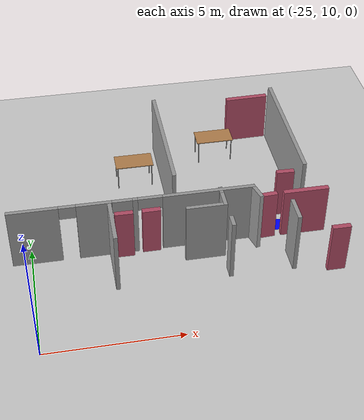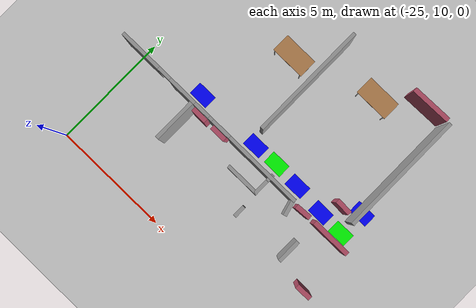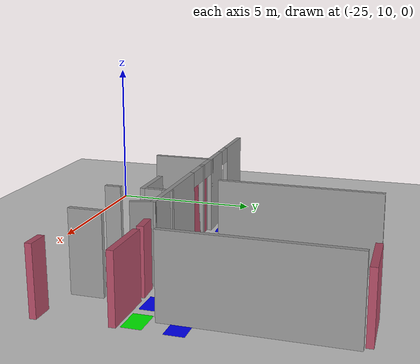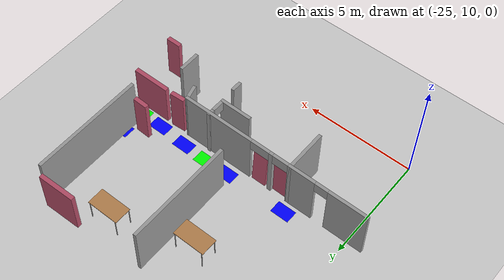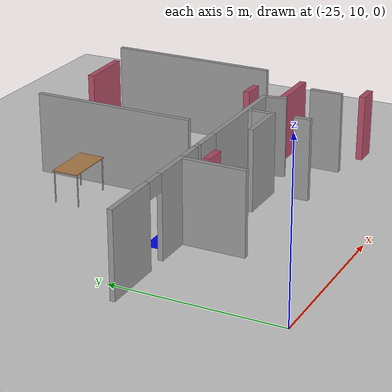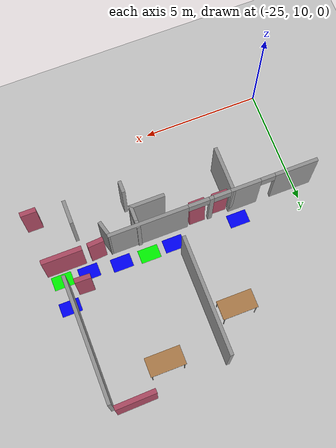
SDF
<sdf version="1.6">
 <world name="default">
  <model name="ground_plane">
   <pose>0 0 0.001 0 -0 0</pose>
   <static>1</static>
   <link name="link">
    <collision name="collision">
     <geometry><plane><normal>0 0 1</normal><size>100 100</size></plane></geometry>
     <surface><friction><ode><mu>100</mu><mu2>50</mu2></ode></friction></surface>
    </collision>
    <visual name="visual">
     <cast_shadows>0</cast_shadows>
     <geometry><plane><normal>0 0 1</normal><size>100 100</size></plane></geometry>
     <material>
      <script><uri>file://media/materials/scripts/gazebo.material</uri><name>Gazebo/Grey</name></script>
     </material>
    </visual>
   </link>
  </model>
  <model name="fin_se1f1.sdf">
   <pose>1.8125 -2.2901 0 0 -0 0</pose>
   <link name="Wall_116">
    <collision name="Wall_116_Collision">
     <geometry><box><size>2 0.15 2.5</size></box></geometry>
     <pose>0 0 1.25 0 -0 0</pose>
    </collision>
    <visual name="Wall_116_Visual">
     <pose>0 0 1.25 0 -0 0</pose>
     <geometry><box><size>2 0.15 2.5</size></box></geometry>
     <material>
      <script><uri>file://media/materials/scripts/gazebo.material</uri><name>Gazebo/Grey</name></script>
      <ambient>1 1 1 1</ambient>
     </material>
     <meta><layer>0</layer></meta>
    </visual>
    <pose>-23.8638 15.7977 0 0 0 -1.5708</pose>
   </link>
   <link name="Wall_120">
    <pose>-19.7977 16.3512 0 0 0 -1.5708</pose>
    <visual name="Wall_120_Visual_0">
     <pose>-0.341993 0 1.25 0 -0 0</pose>
     <geometry><box><size>0.316013 0.15 2.5</size></box></geometry>
     <material>
      <script><uri>file://media/materials/scripts/gazebo.material</uri><name>Gazebo/Grey</name></script>
      <ambient>1 1 1 1</ambient>
     </material>
     <meta><layer>0</layer></meta>
    </visual>
    <collision name="Wall_120_Collision_0">
     <geometry><box><size>0.316013 0.15 2.5</size></box></geometry>
     <pose>-0.341993 0 1.25 0 -0 0</pose>
    </collision>
    <visual name="Wall_120_Visual_1">
     <pose>0.158007 0 2.25 0 -0 0</pose>
     <geometry><box><size>0.683987 0.15 0.5</size></box></geometry>
     <material>
      <script><uri>file://media/materials/scripts/gazebo.material</uri><name>Gazebo/Grey</name></script>
      <ambient>1 1 1 1</ambient>
     </material>
     <meta><layer>0</layer></meta>
    </visual>
    <collision name="Wall_120_Collision_1">
     <geometry><box><size>0.683987 0.15 0.5</size></box></geometry>
     <pose>0.158007 0 2.25 0 -0 0</pose>
    </collision>
   </link>
   <link name="Wall_121">
    <collision name="Wall_121_Collision">
     <geometry><box><size>1.5 0.15 2.5</size></box></geometry>
     <pose>0 0 1.25 0 -0 0</pose>
    </collision>
    <visual name="Wall_121_Visual">
     <pose>0 0 1.25 0 -0 0</pose>
     <geometry><box><size>1.5 0.15 2.5</size></box></geometry>
     <material>
      <script><uri>file://media/materials/scripts/gazebo.material</uri><name>Gazebo/Grey</name></script>
      <ambient>1 1 1 1</ambient>
     </material>
     <meta><layer>0</layer></meta>
    </visual>
    <pose>-20.4727 15.9262 0 0 -0 3.14159</pose>
   </link>
   <link name="Wall_123">
    <collision name="Wall_123_Collision">
     <geometry><box><size>0.5 0.15 2.5</size></box></geometry>
     <pose>0 0 1.25 0 -0 0</pose>
    </collision>
    <visual name="Wall_123_Visual">
     <pose>0 0 1.25 0 -0 0</pose>
     <geometry><box><size>0.5 0.15 2.5</size></box></geometry>
     <material>
      <script><uri>file://media/materials/scripts/gazebo.material</uri><name>Gazebo/Grey</name></script>
      <ambient>1 1 1 1</ambient>
     </material>
     <meta><layer>0</layer></meta>
    </visual>
    <pose>-19.7442 14.9961 0 0 0 -1.5708</pose>
   </link>
   <link name="Wall_125">
    <collision name="Wall_125_Collision">
     <geometry><box><size>1 0.15 2.5</size></box></geometry>
     <pose>0 0 1.25 0 -0 0</pose>
    </collision>
    <visual name="Wall_125_Visual">
     <pose>0 0 1.25 0 -0 0</pose>
     <geometry><box><size>1 0.15 2.5</size></box></geometry>
     <material>
      <script><uri>file://media/materials/scripts/gazebo.material</uri><name>Gazebo/Grey</name></script>
      <ambient>1 1 1 1</ambient>
     </material>
     <meta><layer>0</layer></meta>
    </visual>
    <pose>-17.39 15.2276 0 0 0 -1.5708</pose>
   </link>
   <link name="Wall_84">
    <collision name="Wall_84_Collision">
     <geometry><box><size>5.25 0.15 2.5</size></box></geometry>
     <pose>0 0 1.25 0 -0 0</pose>
    </collision>
    <visual name="Wall_84_Visual">
     <pose>0 0 1.25 0 -0 0</pose>
     <geometry><box><size>5.25 0.15 2.5</size></box></geometry>
     <material>
      <script><uri>file://media/materials/scripts/gazebo.material</uri><name>Gazebo/Grey</name></script>
      <ambient>1 1 1 1</ambient>
     </material>
     <meta><layer>0</layer></meta>
    </visual>
    <pose>-16.3938 20.2305 0 0 0 -1.5708</pose>
   </link>
   <link name="Wall_86">
    <collision name="Wall_86_Collision">
     <geometry><box><size>5 0.15 2.5</size></box></geometry>
     <pose>0 0 1.25 0 -0 0</pose>
    </collision>
    <visual name="Wall_86_Visual">
     <pose>0 0 1.25 0 -0 0</pose>
     <geometry><box><size>5 0.15 2.5</size></box></geometry>
     <material>
      <script><uri>file://media/materials/scripts/gazebo.material</uri><name>Gazebo/Grey</name></script>
      <ambient>1 1 1 1</ambient>
     </material>
     <meta><layer>0</layer></meta>
    </visual>
    <pose>-21.316 20.294 0 0 0 -1.5708</pose>
   </link>
   <link name="Wall_91">
    <pose>-23.0235 16.7227 0.001 0 -0 0</pose>
    <visual name="Wall_91_Visual_0">
     <pose>-3.57417 0 1.25 0 -0 0</pose>
     <geometry><box><size>1.85166 0.15 2.5</size></box></geometry>
     <material>
      <script><uri>file://media/materials/scripts/gazebo.material</uri><name>Gazebo/Grey</name></script>
      <ambient>1 1 1 1</ambient>
     </material>
     <meta><layer>0</layer></meta>
    </visual>
    <collision name="Wall_91_Collision_0">
     <geometry><box><size>1.85166 0.15 2.5</size></box></geometry>
     <pose>-3.57417 0 1.25 0 -0 0</pose>
    </collision>
    <visual name="Wall_91_Visual_1">
     <pose>-1.38374 0 1.25 0 -0 0</pose>
     <geometry><box><size>1.29238 0.15 2.5</size></box></geometry>
     <material>
      <script><uri>file://media/materials/scripts/gazebo.material</uri><name>Gazebo/Grey</name></script>
      <ambient>1 1 1 1</ambient>
     </material>
     <meta><layer>0</layer></meta>
    </visual>
    <collision name="Wall_91_Collision_1">
     <geometry><box><size>1.29238 0.15 2.5</size></box></geometry>
     <pose>-1.38374 0 1.25 0 -0 0</pose>
    </collision>
    <visual name="Wall_91_Visual_2">
     <pose>0.094604 0 1.25 0 -0 0</pose>
     <geometry><box><size>0.186132 0.15 2.5</size></box></geometry>
     <material>
      <script><uri>file://media/materials/scripts/gazebo.material</uri><name>Gazebo/Grey</name></script>
      <ambient>1 1 1 1</ambient>
     </material>
     <meta><layer>0</layer></meta>
    </visual>
    <collision name="Wall_91_Collision_2">
     <geometry><box><size>0.186132 0.15 2.5</size></box></geometry>
     <pose>0.094604 0 1.25 0 -0 0</pose>
    </collision>
    <visual name="Wall_91_Visual_3">
     <pose>2.79384 0 1.25 0 -0 0</pose>
     <geometry><box><size>3.41233 0.15 2.5</size></box></geometry>
     <material>
      <script><uri>file://media/materials/scripts/gazebo.material</uri><name>Gazebo/Grey</name></script>
      <ambient>1 1 1 1</ambient>
     </material>
     <meta><layer>0</layer></meta>
    </visual>
    <collision name="Wall_91_Collision_3">
     <geometry><box><size>3.41233 0.15 2.5</size></box></geometry>
     <pose>2.79384 0 1.25 0 -0 0</pose>
    </collision>
    <visual name="Wall_91_Visual_4">
     <pose>-2.33914 0 2.25 0 -0 0</pose>
     <geometry><box><size>0.61841 0.15 0.5</size></box></geometry>
     <material>
      <script><uri>file://media/materials/scripts/gazebo.material</uri><name>Gazebo/Grey</name></script>
      <ambient>1 1 1 1</ambient>
     </material>
     <meta><layer>0</layer></meta>
    </visual>
    <collision name="Wall_91_Collision_4">
     <geometry><box><size>0.61841 0.15 0.5</size></box></geometry>
     <pose>-2.33914 0 2.25 0 -0 0</pose>
    </collision>
    <visual name="Wall_91_Visual_5">
     <pose>-0.368008 0 2.25 0 -0 0</pose>
     <geometry><box><size>0.739091 0.15 0.5</size></box></geometry>
     <material>
      <script><uri>file://media/materials/scripts/gazebo.material</uri><name>Gazebo/Grey</name></script>
      <ambient>1 1 1 1</ambient>
     </material>
     <meta><layer>0</layer></meta>
    </visual>
    <collision name="Wall_91_Collision_5">
     <geometry><box><size>0.739091 0.15 0.5</size></box></geometry>
     <pose>-0.368008 0 2.25 0 -0 0</pose>
    </collision>
    <visual name="Wall_91_Visual_6">
     <pose>0.637671 0 2.25 0 -0 0</pose>
     <geometry><box><size>0.9 0.15 0.5</size></box></geometry>
     <material>
      <script><uri>file://media/materials/scripts/gazebo.material</uri><name>Gazebo/Grey</name></script>
      <ambient>1 1 1 1</ambient>
     </material>
     <meta><layer>0</layer></meta>
    </visual>
    <collision name="Wall_91_Collision_6">
     <geometry><box><size>0.9 0.15 0.5</size></box></geometry>
     <pose>0.637671 0 2.25 0 -0 0</pose>
    </collision>
   </link>
   <link name="Wall_92">
    <collision name="Wall_92_Collision">
     <geometry><box><size>0.75 0.15 2.5</size></box></geometry>
     <pose>0 0 1.25 0 -0 0</pose>
    </collision>
    <visual name="Wall_92_Visual">
     <pose>0 0 1.25 0 -0 0</pose>
     <geometry><box><size>0.75 0.15 2.5</size></box></geometry>
     <material>
      <script><uri>file://media/materials/scripts/gazebo.material</uri><name>Gazebo/Grey</name></script>
      <ambient>1 1 1 1</ambient>
     </material>
     <meta><layer>0</layer></meta>
    </visual>
    <pose>-18.5209 16.4329 0 0 0 -1.309</pose>
   </link>
   <static>1</static>
  </model>
  <model name="table">
   <static>1</static>
   <link name="link">
    <collision name="surface">
     <pose>0 0 1 0 -0 0</pose>
     <geometry><box><size>1.5 0.8 0.03</size></box></geometry>
     <surface><friction><ode><mu>0.6</mu><mu2>0.6</mu2></ode></friction></surface>
    </collision>
    <visual name="visual1">
     <pose>0 0 1 0 -0 0</pose>
     <geometry><box><size>1.5 0.8 0.03</size></box></geometry>
     <material>
      <script><uri>file://media/materials/scripts/gazebo.material</uri><name>Gazebo/Wood</name></script>
     </material>
    </visual>
    <collision name="front_left_leg">
     <pose>0.68 0.38 0.5 0 -0 0</pose>
     <geometry><cylinder><radius>0.02</radius><length>1</length></cylinder></geometry>
    </collision>
    <visual name="front_left_leg">
     <pose>0.68 0.38 0.5 0 -0 0</pose>
     <geometry><cylinder><radius>0.02</radius><length>1</length></cylinder></geometry>
     <material>
      <script><uri>file://media/materials/scripts/gazebo.material</uri><name>Gazebo/Grey</name></script>
     </material>
    </visual>
    <collision name="front_right_leg">
     <pose>0.68 -0.38 0.5 0 -0 0</pose>
     <geometry><cylinder><radius>0.02</radius><length>1</length></cylinder></geometry>
    </collision>
    <visual name="front_right_leg">
     <pose>0.68 -0.38 0.5 0 -0 0</pose>
     <geometry><cylinder><radius>0.02</radius><length>1</length></cylinder></geometry>
     <material>
      <script><uri>file://media/materials/scripts/gazebo.material</uri><name>Gazebo/Grey</name></script>
     </material>
    </visual>
    <collision name="back_right_leg">
     <pose>-0.68 -0.38 0.5 0 -0 0</pose>
     <geometry><cylinder><radius>0.02</radius><length>1</length></cylinder></geometry>
    </collision>
    <visual name="back_right_leg">
     <pose>-0.68 -0.38 0.5 0 -0 0</pose>
     <geometry><cylinder><radius>0.02</radius><length>1</length></cylinder></geometry>
     <material>
      <script><uri>file://media/materials/scripts/gazebo.material</uri><name>Gazebo/Grey</name></script>
     </material>
    </visual>
    <collision name="back_left_leg">
     <pose>-0.68 0.38 0.5 0 -0 0</pose>
     <geometry><cylinder><radius>0.02</radius><length>1</length></cylinder></geometry>
    </collision>
    <visual name="back_left_leg">
     <pose>-0.68 0.38 0.5 0 -0 0</pose>
     <geometry><cylinder><radius>0.02</radius><length>1</length></cylinder></geometry>
     <material>
      <script><uri>file://media/materials/scripts/gazebo.material</uri><name>Gazebo/Grey</name></script>
     </material>
    </visual>
   </link>
   <pose>-20.6493 18.5224 0.001 0 -0 0</pose>
  </model>
  <model name="table_0">
   <static>1</static>
   <link name="link">
    <collision name="surface">
     <pose>0 0 1 0 -0 0</pose>
     <geometry><box><size>1.5 0.8 0.03</size></box></geometry>
     <surface><friction><ode><mu>0.6</mu><mu2>0.6</mu2></ode></friction></surface>
    </collision>
    <visual name="visual1">
     <pose>0 0 1 0 -0 0</pose>
     <geometry><box><size>1.5 0.8 0.03</size></box></geometry>
     <material>
      <script><uri>file://media/materials/scripts/gazebo.material</uri><name>Gazebo/Wood</name></script>
     </material>
    </visual>
    <collision name="front_left_leg">
     <pose>0.68 0.38 0.5 0 -0 0</pose>
     <geometry><cylinder><radius>0.02</radius><length>1</length></cylinder></geometry>
    </collision>
    <visual name="front_left_leg">
     <pose>0.68 0.38 0.5 0 -0 0</pose>
     <geometry><cylinder><radius>0.02</radius><length>1</length></cylinder></geometry>
     <material>
      <script><uri>file://media/materials/scripts/gazebo.material</uri><name>Gazebo/Grey</name></script>
     </material>
    </visual>
    <collision name="front_right_leg">
     <pose>0.68 -0.38 0.5 0 -0 0</pose>
     <geometry><cylinder><radius>0.02</radius><length>1</length></cylinder></geometry>
    </collision>
    <visual name="front_right_leg">
     <pose>0.68 -0.38 0.5 0 -0 0</pose>
     <geometry><cylinder><radius>0.02</radius><length>1</length></cylinder></geometry>
     <material>
      <script><uri>file://media/materials/scripts/gazebo.material</uri><name>Gazebo/Grey</name></script>
     </material>
    </visual>
    <collision name="back_right_leg">
     <pose>-0.68 -0.38 0.5 0 -0 0</pose>
     <geometry><cylinder><radius>0.02</radius><length>1</length></cylinder></geometry>
    </collision>
    <visual name="back_right_leg">
     <pose>-0.68 -0.38 0.5 0 -0 0</pose>
     <geometry><cylinder><radius>0.02</radius><length>1</length></cylinder></geometry>
     <material>
      <script><uri>file://media/materials/scripts/gazebo.material</uri><name>Gazebo/Grey</name></script>
     </material>
    </visual>
    <collision name="back_left_leg">
     <pose>-0.68 0.38 0.5 0 -0 0</pose>
     <geometry><cylinder><radius>0.02</radius><length>1</length></cylinder></geometry>
    </collision>
    <visual name="back_left_leg">
     <pose>-0.68 0.38 0.5 0 -0 0</pose>
     <geometry><cylinder><radius>0.02</radius><length>1</length></cylinder></geometry>
     <material>
      <script><uri>file://media/materials/scripts/gazebo.material</uri><name>Gazebo/Grey</name></script>
     </material>
    </visual>
   </link>
   <pose>-17.1552 19.6086 0.001 0 -0 0</pose>
  </model>
  <model name="doorOutside_clone_0">
   <link name="link">
    <pose>0.155539 -0.366282 0.216958 0 -0 0</pose>
    <inertial>
     <mass>2.13199</mass>
     <inertia>
      <ixx>0.452656</ixx>
      <ixy>0</ixy>
      <ixz>0</ixz>
      <iyy>0.796738</iyy>
      <iyz>0</iyz>
      <izz>0.699414</izz>
     </inertia>
     <pose>0 0 0.001 0 -0 0</pose>
    </inertial>
    <visual name="visual">
     <geometry><box><size>1.71368 0.198843 2.05986</size></box></geometry>
     <material>
      <script><name>Gazebo/Grey</name><uri>file://media/materials/scripts/gazebo.material</uri></script>
      <ambient>0.7 0.3 0.4 1</ambient>
      <diffuse>0.7 0.7 0.7 1</diffuse>
      <specular>0.01 0.01 0.01 1</specular>
      <emissive>0 0 0 1</emissive>
      <shader type="vertex"><normal_map>__default__</normal_map></shader>
      <lighting>0</lighting>
     </material>
     <pose>0 0 0.001 0 -0 0</pose>
    </visual>
    <collision name="collision">
     <pose>0 0 0.001 0 -0 0</pose>
     <geometry><box><size>1.71368 0.198843 2.05986</size></box></geometry>
     <surface>
      <friction>
       <ode><mu>1</mu><mu2>1</mu2><fdir1>0 0 0</fdir1><slip1>0</slip1><slip2>0</slip2></ode>
       <torsional>
        <coefficient>1</coefficient>
        <patch_radius>0</patch_radius>
        <surface_radius>0</surface_radius>
        <use_patch_radius>1</use_patch_radius>
        <ode><slip>0</slip></ode>
       </torsional>
      </friction>
      <bounce><restitution_coefficient>0</restitution_coefficient><threshold>1e+06</threshold></bounce>
      <contact>
       <collide_without_contact>0</collide_without_contact>
       <collide_without_contact_bitmask>1</collide_without_contact_bitmask>
       <collide_bitmask>1</collide_bitmask>
       <ode>
        <soft_cfm>0</soft_cfm>
        <soft_erp>0.2</soft_erp>
        <kp>1e+13</kp>
        <kd>1</kd>
        <max_vel>0.01</max_vel>
        <min_depth>0</min_depth>
       </ode>
       <bullet>
        <split_impulse>1</split_impulse>
        <split_impulse_penetration_threshold>-0.01</split_impulse_penetration_threshold>
        <soft_cfm>0</soft_cfm>
        <soft_erp>0.2</soft_erp>
        <kp>1e+13</kp>
        <kd>1</kd>
       </bullet>
      </contact>
     </surface>
    </collision>
   </link>
   <static>1</static>
   <pose>-15.712 21.0347 0.812963 1e-06 5e-06 0.023116</pose>
  </model>
  <model name="intersection_8">
   <link name="link">
    <pose>0 0 0.001 0 -0 0</pose>
    <inertial>
     <mass>0.0352517</mass>
     <inertia>
      <ixx>0.000997067</ixx>
      <ixy>0</ixy>
      <ixz>0</ixz>
      <iyy>0.00220147</iyy>
      <iyz>0</iyz>
      <izz>0.0031692</izz>
     </inertia>
     <pose>0 0 0.001 0 -0 0</pose>
    </inertial>
    <visual name="visual">
     <geometry><box><size>0.862743 0.578289 1e-06</size></box></geometry>
     <material>
      <script><name>Gazebo/Grey</name><uri>file://media/materials/scripts/gazebo.material</uri></script>
      <ambient>0 0 1 1</ambient>
      <diffuse>0 0 1 1</diffuse>
      <specular>0 0 1 1</specular>
      <emissive>0 0 1 1</emissive>
      <shader type="vertex"><normal_map>__default__</normal_map></shader>
     </material>
     <pose>0 0 0.001 0 -0 0</pose>
    </visual>
    <collision name="collision">
     <pose>0 0 0.001 0 -0 0</pose>
     <geometry><box><size>0.862743 0.578289 0.000477</size></box></geometry>
     <surface>
      <friction>
       <ode><mu>1</mu><mu2>1</mu2><fdir1>0 0 0</fdir1><slip1>0</slip1><slip2>0</slip2></ode>
       <torsional>
        <coefficient>1</coefficient>
        <patch_radius>0</patch_radius>
        <surface_radius>0</surface_radius>
        <use_patch_radius>1</use_patch_radius>
        <ode><slip>0</slip></ode>
       </torsional>
      </friction>
      <bounce><restitution_coefficient>0</restitution_coefficient><threshold>1e+06</threshold></bounce>
      <contact>
       <collide_without_contact>0</collide_without_contact>
       <collide_without_contact_bitmask>1</collide_without_contact_bitmask>
       <collide_bitmask>1</collide_bitmask>
       <ode>
        <soft_cfm>0</soft_cfm>
        <soft_erp>0.2</soft_erp>
        <kp>1e+13</kp>
        <kd>1</kd>
        <max_vel>0.01</max_vel>
        <min_depth>0</min_depth>
       </ode>
       <bullet>
        <split_impulse>1</split_impulse>
        <split_impulse_penetration_threshold>-0.01</split_impulse_penetration_threshold>
        <soft_cfm>0</soft_cfm>
        <soft_erp>0.2</soft_erp>
        <kp>1e+13</kp>
        <kd>1</kd>
       </bullet>
      </contact>
     </surface>
    </collision>
   </link>
   <static>1</static>
   <pose>-14.3588 16.025 0 0 -0 0</pose>
  </model>
  <model name="doorInside_1">
   <link name="link">
    <pose>0.712274 -0.220649 0.216958 0 -0 0</pose>
    <inertial>
     <mass>0.840612</mass>
     <inertia>
      <ixx>0.178476</ixx>
      <ixy>0</ixy>
      <ixz>0</ixz>
      <iyy>0.140406</iyy>
      <iyz>0</iyz>
      <izz>0.102032</izz>
     </inertia>
     <pose>0 0 0.001 0 -0 0</pose>
    </inertial>
    <visual name="visual">
     <geometry><box><size>0.675678 0.198843 2.05986</size></box></geometry>
     <material>
      <script><name>Gazebo/Grey</name><uri>file://media/materials/scripts/gazebo.material</uri></script>
      <ambient>0.7 0.3 0.4 1</ambient>
      <diffuse>0.7 0.7 0.7 1</diffuse>
      <specular>0.01 0.01 0.01 1</specular>
      <emissive>1 0 0 1</emissive>
      <shader type="vertex"><normal_map>__default__</normal_map></shader>
      <lighting>0</lighting>
     </material>
     <pose>0 0 0.001 0 -0 0</pose>
    </visual>
    <collision name="collision">
     <pose>0 0 0.001 0 -0 0</pose>
     <geometry><box><size>0.675678 0.198843 2.05986</size></box></geometry>
     <surface>
      <friction>
       <ode><mu>1</mu><mu2>1</mu2><fdir1>0 0 0</fdir1><slip1>0</slip1><slip2>0</slip2></ode>
       <torsional>
        <coefficient>1</coefficient>
        <patch_radius>0</patch_radius>
        <surface_radius>0</surface_radius>
        <use_patch_radius>1</use_patch_radius>
        <ode><slip>0</slip></ode>
       </torsional>
      </friction>
      <bounce><restitution_coefficient>0</restitution_coefficient><threshold>1e+06</threshold></bounce>
      <contact>
       <collide_without_contact>0</collide_without_contact>
       <collide_without_contact_bitmask>1</collide_without_contact_bitmask>
       <collide_bitmask>1</collide_bitmask>
       <ode>
        <soft_cfm>0</soft_cfm>
        <soft_erp>0.2</soft_erp>
        <kp>1e+13</kp>
        <kd>1</kd>
        <max_vel>0.01</max_vel>
        <min_depth>0</min_depth>
       </ode>
       <bullet>
        <split_impulse>1</split_impulse>
        <split_impulse_penetration_threshold>-0.01</split_impulse_penetration_threshold>
        <soft_cfm>0</soft_cfm>
        <soft_erp>0.2</soft_erp>
        <kp>1e+13</kp>
        <kd>1</kd>
       </bullet>
      </contact>
     </surface>
    </collision>
   </link>
   <static>0</static>
   <pose>-21.2722 14.5453 0.828726 0.056423 -4e-06 -0</pose>
  </model>
  <model name="doorInside_2">
   <link name="link">
    <pose>0.712274 -0.220649 0.216958 0 -0 0</pose>
    <inertial>
     <mass>0.840612</mass>
     <inertia>
      <ixx>0.178476</ixx>
      <ixy>0</ixy>
      <ixz>0</ixz>
      <iyy>0.140406</iyy>
      <iyz>0</iyz>
      <izz>0.102032</izz>
     </inertia>
     <pose>0 0 0.001 0 -0 0</pose>
    </inertial>
    <visual name="visual">
     <geometry><box><size>0.675678 0.198843 2.05986</size></box></geometry>
     <material>
      <script><name>Gazebo/Grey</name><uri>file://media/materials/scripts/gazebo.material</uri></script>
      <ambient>0.7 0.3 0.4 1</ambient>
      <diffuse>0.7 0.7 0.7 1</diffuse>
      <specular>0.01 0.01 0.01 1</specular>
      <emissive>1 0 0 1</emissive>
      <shader type="vertex"><normal_map>__default__</normal_map></shader>
      <lighting>0</lighting>
     </material>
     <pose>0 0 0.001 0 -0 0</pose>
    </visual>
    <collision name="collision">
     <pose>0 0 0.001 0 -0 0</pose>
     <geometry><box><size>0.675678 0.198843 2.05986</size></box></geometry>
     <surface>
      <friction>
       <ode><mu>1</mu><mu2>1</mu2><fdir1>0 0 0</fdir1><slip1>0</slip1><slip2>0</slip2></ode>
       <torsional>
        <coefficient>1</coefficient>
        <patch_radius>0</patch_radius>
        <surface_radius>0</surface_radius>
        <use_patch_radius>1</use_patch_radius>
        <ode><slip>0</slip></ode>
       </torsional>
      </friction>
      <bounce><restitution_coefficient>0</restitution_coefficient><threshold>1e+06</threshold></bounce>
      <contact>
       <collide_without_contact>0</collide_without_contact>
       <collide_without_contact_bitmask>1</collide_without_contact_bitmask>
       <collide_bitmask>1</collide_bitmask>
       <ode>
        <soft_cfm>0</soft_cfm>
        <soft_erp>0.2</soft_erp>
        <kp>1e+13</kp>
        <kd>1</kd>
        <max_vel>0.01</max_vel>
        <min_depth>0</min_depth>
       </ode>
       <bullet>
        <split_impulse>1</split_impulse>
        <split_impulse_penetration_threshold>-0.01</split_impulse_penetration_threshold>
        <soft_cfm>0</soft_cfm>
        <soft_erp>0.2</soft_erp>
        <kp>1e+13</kp>
        <kd>1</kd>
       </bullet>
      </contact>
     </surface>
    </collision>
   </link>
   <static>0</static>
   <pose>-22.2708 14.4832 0.811966 -0 2e-06 -0.011574</pose>
  </model>
  <model name="doorInside_12">
   <link name="link">
    <pose>0.712274 -0.220649 0.216958 0 -0 0</pose>
    <inertial>
     <mass>0.840612</mass>
     <inertia>
      <ixx>0.178476</ixx>
      <ixy>0</ixy>
      <ixz>0</ixz>
      <iyy>0.140406</iyy>
      <iyz>0</iyz>
      <izz>0.102032</izz>
     </inertia>
     <pose>0 0 0.001 0 -0 0</pose>
    </inertial>
    <visual name="visual">
     <geometry><box><size>0.675678 0.198843 2.05986</size></box></geometry>
     <material>
      <script><name>Gazebo/Grey</name><uri>file://media/materials/scripts/gazebo.material</uri></script>
      <ambient>0.7 0.3 0.4 1</ambient>
      <diffuse>0.7 0.7 0.7 1</diffuse>
      <specular>0.01 0.01 0.01 1</specular>
      <emissive>1 0 0 1</emissive>
      <shader type="vertex"><normal_map>__default__</normal_map></shader>
      <lighting>0</lighting>
     </material>
     <pose>0 0 0.001 0 -0 0</pose>
    </visual>
    <collision name="collision">
     <pose>0 0 0.001 0 -0 0</pose>
     <geometry><box><size>0.675678 0.198843 2.05986</size></box></geometry>
     <surface>
      <friction>
       <ode><mu>1</mu><mu2>1</mu2><fdir1>0 0 0</fdir1><slip1>0</slip1><slip2>0</slip2></ode>
       <torsional>
        <coefficient>1</coefficient>
        <patch_radius>0</patch_radius>
        <surface_radius>0</surface_radius>
        <use_patch_radius>1</use_patch_radius>
        <ode><slip>0</slip></ode>
       </torsional>
      </friction>
      <bounce><restitution_coefficient>0</restitution_coefficient><threshold>1e+06</threshold></bounce>
      <contact>
       <collide_without_contact>0</collide_without_contact>
       <collide_without_contact_bitmask>1</collide_without_contact_bitmask>
       <collide_bitmask>1</collide_bitmask>
       <ode>
        <soft_cfm>0</soft_cfm>
        <soft_erp>0.2</soft_erp>
        <kp>1e+13</kp>
        <kd>1</kd>
        <max_vel>0.01</max_vel>
        <min_depth>0</min_depth>
       </ode>
       <bullet>
        <split_impulse>1</split_impulse>
        <split_impulse_penetration_threshold>-0.01</split_impulse_penetration_threshold>
        <soft_cfm>0</soft_cfm>
        <soft_erp>0.2</soft_erp>
        <kp>1e+13</kp>
        <kd>1</kd>
       </bullet>
      </contact>
     </surface>
    </collision>
   </link>
   <static>0</static>
   <pose>-14.8003 12.4591 0.815402 0.010867 -0 -0.001281</pose>
  </model>
  <model name="corridor_19">
   <link name="link">
    <pose>0 0 0.001 0 -0 0</pose>
    <inertial>
     <mass>0.0352517</mass>
     <inertia>
      <ixx>0.00099707</ixx>
      <ixy>0</ixy>
      <ixz>0</ixz>
      <iyy>0.00220147</iyy>
      <iyz>0</iyz>
      <izz>0.0031692</izz>
     </inertia>
     <pose>0 0 0.001 0 -0 0</pose>
    </inertial>
    <visual name="visual">
     <geometry><box><size>0.862743 0.578289 1e-06</size></box></geometry>
     <material>
      <script><name>Gazebo/Grey</name><uri>file://media/materials/scripts/gazebo.material</uri></script>
      <ambient>0 1 0 1</ambient>
      <diffuse>0 1 0 1</diffuse>
      <specular>0 1 0 1</specular>
      <emissive>0 1 0 1</emissive>
      <shader type="vertex"><normal_map>__default__</normal_map></shader>
     </material>
     <pose>0 0 0.001 0 -0 0</pose>
    </visual>
    <collision name="collision">
     <pose>0 0 0.001 0 -0 0</pose>
     <geometry><box><size>0.862743 0.578289 0.000477</size></box></geometry>
     <surface>
      <friction>
       <ode><mu>1</mu><mu2>1</mu2><fdir1>0 0 0</fdir1><slip1>0</slip1><slip2>0</slip2></ode>
       <torsional>
        <coefficient>1</coefficient>
        <patch_radius>0</patch_radius>
        <surface_radius>0</surface_radius>
        <use_patch_radius>1</use_patch_radius>
        <ode><slip>0</slip></ode>
       </torsional>
      </friction>
      <bounce><restitution_coefficient>0</restitution_coefficient><threshold>1e+06</threshold></bounce>
      <contact>
       <collide_without_contact>0</collide_without_contact>
       <collide_without_contact_bitmask>1</collide_without_contact_bitmask>
       <collide_bitmask>1</collide_bitmask>
       <ode>
        <soft_cfm>0</soft_cfm>
        <soft_erp>0.2</soft_erp>
        <kp>1e+13</kp>
        <kd>1</kd>
        <max_vel>0.01</max_vel>
        <min_depth>0</min_depth>
       </ode>
       <bullet>
        <split_impulse>1</split_impulse>
        <split_impulse_penetration_threshold>-0.01</split_impulse_penetration_threshold>
        <soft_cfm>0</soft_cfm>
        <soft_erp>0.2</soft_erp>
        <kp>1e+13</kp>
        <kd>1</kd>
       </bullet>
      </contact>
     </surface>
    </collision>
   </link>
   <static>1</static>
   <pose>-14.4244 14.8609 0 0 -0 0</pose>
  </model>
  <model name="doorInside_13">
   <link name="link">
    <pose>0.712274 -0.220649 0.216958 0 -0 0</pose>
    <inertial>
     <mass>0.840612</mass>
     <inertia>
      <ixx>0.178476</ixx>
      <ixy>0</ixy>
      <ixz>0</ixz>
      <iyy>0.140406</iyy>
      <iyz>0</iyz>
      <izz>0.102032</izz>
     </inertia>
     <pose>0 0 0.001 0 -0 0</pose>
    </inertial>
    <visual name="visual">
     <geometry><box><size>0.675678 0.198843 2.05986</size></box></geometry>
     <material>
      <script><name>Gazebo/Grey</name><uri>file://media/materials/scripts/gazebo.material</uri></script>
      <ambient>0.7 0.3 0.4 1</ambient>
      <diffuse>0.7 0.7 0.7 1</diffuse>
      <specular>0.01 0.01 0.01 1</specular>
      <emissive>1 0 0 1</emissive>
      <shader type="vertex"><normal_map>__default__</normal_map></shader>
      <lighting>0</lighting>
     </material>
     <pose>0 0 0.001 0 -0 0</pose>
    </visual>
    <collision name="collision">
     <pose>0 0 0.001 0 -0 0</pose>
     <geometry><box><size>0.675678 0.198843 2.05986</size></box></geometry>
     <surface>
      <friction>
       <ode><mu>1</mu><mu2>1</mu2><fdir1>0 0 0</fdir1><slip1>0</slip1><slip2>0</slip2></ode>
       <torsional>
        <coefficient>1</coefficient>
        <patch_radius>0</patch_radius>
        <surface_radius>0</surface_radius>
        <use_patch_radius>1</use_patch_radius>
        <ode><slip>0</slip></ode>
       </torsional>
      </friction>
      <bounce><restitution_coefficient>0</restitution_coefficient><threshold>1e+06</threshold></bounce>
      <contact>
       <collide_without_contact>0</collide_without_contact>
       <collide_without_contact_bitmask>1</collide_without_contact_bitmask>
       <collide_bitmask>1</collide_bitmask>
       <ode>
        <soft_cfm>0</soft_cfm>
        <soft_erp>0.2</soft_erp>
        <kp>1e+13</kp>
        <kd>1</kd>
        <max_vel>0.01</max_vel>
        <min_depth>0</min_depth>
       </ode>
       <bullet>
        <split_impulse>1</split_impulse>
        <split_impulse_penetration_threshold>-0.01</split_impulse_penetration_threshold>
        <soft_cfm>0</soft_cfm>
        <soft_erp>0.2</soft_erp>
        <kp>1e+13</kp>
        <kd>1</kd>
       </bullet>
      </contact>
     </surface>
    </collision>
   </link>
   <static>0</static>
   <pose>-15.9385 15.8144 0.811963 -1e-06 -3e-06 -0.030591</pose>
  </model>
  <model name="corridor_23">
   <link name="link">
    <pose>0 0 0.001 0 -0 0</pose>
    <inertial>
     <mass>0.0352517</mass>
     <inertia>
      <ixx>0.00099707</ixx>
      <ixy>0</ixy>
      <ixz>0</ixz>
      <iyy>0.00220147</iyy>
      <iyz>0</iyz>
      <izz>0.0031692</izz>
     </inertia>
     <pose>0 0 0.001 0 -0 0</pose>
    </inertial>
    <visual name="visual">
     <geometry><box><size>0.862743 0.578289 1e-06</size></box></geometry>
     <material>
      <script><name>Gazebo/Grey</name><uri>file://media/materials/scripts/gazebo.material</uri></script>
      <ambient>0 1 0 1</ambient>
      <diffuse>0 1 0 1</diffuse>
      <specular>0 1 0 1</specular>
      <emissive>0 1 0 1</emissive>
      <shader type="vertex"><normal_map>__default__</normal_map></shader>
     </material>
     <pose>0 0 0.001 0 -0 0</pose>
    </visual>
    <collision name="collision">
     <pose>0 0 0.001 0 -0 0</pose>
     <geometry><box><size>0.862743 0.578289 0.000477</size></box></geometry>
     <surface>
      <friction>
       <ode><mu>1</mu><mu2>1</mu2><fdir1>0 0 0</fdir1><slip1>0</slip1><slip2>0</slip2></ode>
       <torsional>
        <coefficient>1</coefficient>
        <patch_radius>0</patch_radius>
        <surface_radius>0</surface_radius>
        <use_patch_radius>1</use_patch_radius>
        <ode><slip>0</slip></ode>
       </torsional>
      </friction>
      <bounce><restitution_coefficient>0</restitution_coefficient><threshold>1e+06</threshold></bounce>
      <contact>
       <collide_without_contact>0</collide_without_contact>
       <collide_without_contact_bitmask>1</collide_without_contact_bitmask>
       <collide_bitmask>1</collide_bitmask>
       <ode>
        <soft_cfm>0</soft_cfm>
        <soft_erp>0.2</soft_erp>
        <kp>1e+13</kp>
        <kd>1</kd>
        <max_vel>0.01</max_vel>
        <min_depth>0</min_depth>
       </ode>
       <bullet>
        <split_impulse>1</split_impulse>
        <split_impulse_penetration_threshold>-0.01</split_impulse_penetration_threshold>
        <soft_cfm>0</soft_cfm>
        <soft_erp>0.2</soft_erp>
        <kp>1e+13</kp>
        <kd>1</kd>
       </bullet>
      </contact>
     </surface>
    </collision>
   </link>
   <static>1</static>
   <pose>-18.1836 15.0499 0 0 -0 0</pose>
  </model>
  <model name="intersection_41">
   <link name="link">
    <pose>0 0 0.001 0 -0 0</pose>
    <inertial>
     <mass>0.0352517</mass>
     <inertia>
      <ixx>0.000997067</ixx>
      <ixy>0</ixy>
      <ixz>0</ixz>
      <iyy>0.00220147</iyy>
      <iyz>0</iyz>
      <izz>0.0031692</izz>
     </inertia>
     <pose>0 0 0.001 0 -0 0</pose>
    </inertial>
    <visual name="visual">
     <geometry><box><size>0.862743 0.578289 1e-06</size></box></geometry>
     <material>
      <script><name>Gazebo/Grey</name><uri>file://media/materials/scripts/gazebo.material</uri></script>
      <ambient>0 0 1 1</ambient>
      <diffuse>0 0 1 1</diffuse>
      <specular>0 0 1 1</specular>
      <emissive>0 0 1 1</emissive>
      <shader type="vertex"><normal_map>__default__</normal_map></shader>
     </material>
     <pose>0 0 0.001 0 -0 0</pose>
    </visual>
    <collision name="collision">
     <pose>0 0 0.001 0 -0 0</pose>
     <geometry><box><size>0.862743 0.578289 0.000477</size></box></geometry>
     <surface>
      <friction>
       <ode><mu>1</mu><mu2>1</mu2><fdir1>0 0 0</fdir1><slip1>0</slip1><slip2>0</slip2></ode>
       <torsional>
        <coefficient>1</coefficient>
        <patch_radius>0</patch_radius>
        <surface_radius>0</surface_radius>
        <use_patch_radius>1</use_patch_radius>
        <ode><slip>0</slip></ode>
       </torsional>
      </friction>
      <bounce><restitution_coefficient>0</restitution_coefficient><threshold>1e+06</threshold></bounce>
      <contact>
       <collide_without_contact>0</collide_without_contact>
       <collide_without_contact_bitmask>1</collide_without_contact_bitmask>
       <collide_bitmask>1</collide_bitmask>
       <ode>
        <soft_cfm>0</soft_cfm>
        <soft_erp>0.2</soft_erp>
        <kp>1e+13</kp>
        <kd>1</kd>
        <max_vel>0.01</max_vel>
        <min_depth>0</min_depth>
       </ode>
       <bullet>
        <split_impulse>1</split_impulse>
        <split_impulse_penetration_threshold>-0.01</split_impulse_penetration_threshold>
        <soft_cfm>0</soft_cfm>
        <soft_erp>0.2</soft_erp>
        <kp>1e+13</kp>
        <kd>1</kd>
       </bullet>
      </contact>
     </surface>
    </collision>
   </link>
   <static>1</static>
   <pose>-19.2931 15.0013 0 0 -0 0</pose>
  </model>
  <model name="intersection_42">
   <link name="link">
    <pose>0 0 0.001 0 -0 0</pose>
    <inertial>
     <mass>0.0352517</mass>
     <inertia>
      <ixx>0.000997067</ixx>
      <ixy>0</ixy>
      <ixz>0</ixz>
      <iyy>0.00220147</iyy>
      <iyz>0</iyz>
      <izz>0.0031692</izz>
     </inertia>
     <pose>0 0 0.001 0 -0 0</pose>
    </inertial>
    <visual name="visual">
     <geometry><box><size>0.862743 0.578289 1e-06</size></box></geometry>
     <material>
      <script><name>Gazebo/Grey</name><uri>file://media/materials/scripts/gazebo.material</uri></script>
      <ambient>0 0 1 1</ambient>
      <diffuse>0 0 1 1</diffuse>
      <specular>0 0 1 1</specular>
      <emissive>0 0 1 1</emissive>
      <shader type="vertex"><normal_map>__default__</normal_map></shader>
     </material>
     <pose>0 0 0.001 0 -0 0</pose>
    </visual>
    <collision name="collision">
     <pose>0 0 0.001 0 -0 0</pose>
     <geometry><box><size>0.862743 0.578289 0.000477</size></box></geometry>
     <surface>
      <friction>
       <ode><mu>1</mu><mu2>1</mu2><fdir1>0 0 0</fdir1><slip1>0</slip1><slip2>0</slip2></ode>
       <torsional>
        <coefficient>1</coefficient>
        <patch_radius>0</patch_radius>
        <surface_radius>0</surface_radius>
        <use_patch_radius>1</use_patch_radius>
        <ode><slip>0</slip></ode>
       </torsional>
      </friction>
      <bounce><restitution_coefficient>0</restitution_coefficient><threshold>1e+06</threshold></bounce>
      <contact>
       <collide_without_contact>0</collide_without_contact>
       <collide_without_contact_bitmask>1</collide_without_contact_bitmask>
       <collide_bitmask>1</collide_bitmask>
       <ode>
        <soft_cfm>0</soft_cfm>
        <soft_erp>0.2</soft_erp>
        <kp>1e+13</kp>
        <kd>1</kd>
        <max_vel>0.01</max_vel>
        <min_depth>0</min_depth>
       </ode>
       <bullet>
        <split_impulse>1</split_impulse>
        <split_impulse_penetration_threshold>-0.01</split_impulse_penetration_threshold>
        <soft_cfm>0</soft_cfm>
        <soft_erp>0.2</soft_erp>
        <kp>1e+13</kp>
        <kd>1</kd>
       </bullet>
      </contact>
     </surface>
    </collision>
   </link>
   <static>1</static>
   <pose>-16.9743 15.0013 0 0 -0 0</pose>
  </model>
  <model name="intersection_46">
   <link name="link">
    <pose>0 0 0.001 0 -0 0</pose>
    <inertial>
     <mass>0.0352517</mass>
     <inertia>
      <ixx>0.000997067</ixx>
      <ixy>0</ixy>
      <ixz>0</ixz>
      <iyy>0.00220147</iyy>
      <iyz>0</iyz>
      <izz>0.0031692</izz>
     </inertia>
     <pose>0 0 0.001 0 -0 0</pose>
    </inertial>
    <visual name="visual">
     <geometry><box><size>0.862743 0.578289 1e-06</size></box></geometry>
     <material>
      <script><name>Gazebo/Grey</name><uri>file://media/materials/scripts/gazebo.material</uri></script>
      <ambient>0 0 1 1</ambient>
      <diffuse>0 0 1 1</diffuse>
      <specular>0 0 1 1</specular>
      <emissive>0 0 1 1</emissive>
      <shader type="vertex"><normal_map>__default__</normal_map></shader>
     </material>
     <pose>0 0 0.001 0 -0 0</pose>
    </visual>
    <collision name="collision">
     <pose>0 0 0.001 0 -0 0</pose>
     <geometry><box><size>0.862743 0.578289 0.000477</size></box></geometry>
     <surface>
      <friction>
       <ode><mu>1</mu><mu2>1</mu2><fdir1>0 0 0</fdir1><slip1>0</slip1><slip2>0</slip2></ode>
       <torsional>
        <coefficient>1</coefficient>
        <patch_radius>0</patch_radius>
        <surface_radius>0</surface_radius>
        <use_patch_radius>1</use_patch_radius>
        <ode><slip>0</slip></ode>
       </torsional>
      </friction>
      <bounce><restitution_coefficient>0</restitution_coefficient><threshold>1e+06</threshold></bounce>
      <contact>
       <collide_without_contact>0</collide_without_contact>
       <collide_without_contact_bitmask>1</collide_without_contact_bitmask>
       <collide_bitmask>1</collide_bitmask>
       <ode>
        <soft_cfm>0</soft_cfm>
        <soft_erp>0.2</soft_erp>
        <kp>1e+13</kp>
        <kd>1</kd>
        <max_vel>0.01</max_vel>
        <min_depth>0</min_depth>
       </ode>
       <bullet>
        <split_impulse>1</split_impulse>
        <split_impulse_penetration_threshold>-0.01</split_impulse_penetration_threshold>
        <soft_cfm>0</soft_cfm>
        <soft_erp>0.2</soft_erp>
        <kp>1e+13</kp>
        <kd>1</kd>
       </bullet>
      </contact>
     </surface>
    </collision>
   </link>
   <static>1</static>
   <pose>-15.5648 14.8956 0 0 -0 0</pose>
  </model>
  <model name="doorOutside_0">
   <link name="link">
    <pose>0.155539 -0.366282 0.216958 0 -0 0</pose>
    <inertial>
     <mass>2.13199</mass>
     <inertia>
      <ixx>0.452656</ixx>
      <ixy>0</ixy>
      <ixz>0</ixz>
      <iyy>0.796738</iyy>
      <iyz>0</iyz>
      <izz>0.699414</izz>
     </inertia>
    </inertial>
    <visual name="visual">
     <geometry><box><size>1.71368 0.198843 2.05986</size></box></geometry>
     <material>
      <script><name>Gazebo/Grey</name><uri>file://media/materials/scripts/gazebo.material</uri></script>
      <ambient>0.7 0.3 0.4 1</ambient>
      <diffuse>0.7 0.7 0.7 1</diffuse>
      <specular>0.01 0.01 0.01 1</specular>
      <emissive>0 0 0 1</emissive>
      <shader type="vertex"><normal_map>__default__</normal_map></shader>
      <lighting>0</lighting>
     </material>
    </visual>
    <collision name="collision">
     <geometry><box><size>1.71368 0.198843 2.05986</size></box></geometry>
     <surface>
      <friction>
       <ode><mu>1</mu><mu2>1</mu2><fdir1>0 0 0</fdir1><slip1>0</slip1><slip2>0</slip2></ode>
       <torsional>
        <coefficient>1</coefficient>
        <patch_radius>0</patch_radius>
        <surface_radius>0</surface_radius>
        <use_patch_radius>1</use_patch_radius>
        <ode><slip>0</slip></ode>
       </torsional>
      </friction>
      <bounce><restitution_coefficient>0</restitution_coefficient><threshold>1e+06</threshold></bounce>
      <contact>
       <collide_without_contact>0</collide_without_contact>
       <collide_without_contact_bitmask>1</collide_without_contact_bitmask>
       <collide_bitmask>1</collide_bitmask>
       <ode>
        <soft_cfm>0</soft_cfm>
        <soft_erp>0.2</soft_erp>
        <kp>1e+13</kp>
        <kd>1</kd>
        <max_vel>0.01</max_vel>
        <min_depth>0</min_depth>
       </ode>
       <bullet>
        <split_impulse>1</split_impulse>
        <split_impulse_penetration_threshold>-0.01</split_impulse_penetration_threshold>
        <soft_cfm>0</soft_cfm>
        <soft_erp>0.2</soft_erp>
        <kp>1e+13</kp>
        <kd>1</kd>
       </bullet>
      </contact>
     </surface>
    </collision>
   </link>
   <static>0</static>
   <pose>-14.9126 14.7586 0.812966 -1e-06 -5e-06 0.000347</pose>
  </model>
  <model name="doorInside_15">
   <link name="link">
    <pose>0.712274 -0.220649 0.216958 0 -0 0</pose>
    <inertial>
     <mass>0.840612</mass>
     <inertia>
      <ixx>0.178476</ixx>
      <ixy>0</ixy>
      <ixz>0</ixz>
      <iyy>0.140406</iyy>
      <iyz>0</iyz>
      <izz>0.102032</izz>
     </inertia>
    </inertial>
    <visual name="visual">
     <geometry><box><size>0.675678 0.198843 2.05986</size></box></geometry>
     <material>
      <script><name>Gazebo/Grey</name><uri>file://media/materials/scripts/gazebo.material</uri></script>
      <ambient>0.7 0.3 0.4 1</ambient>
      <diffuse>0.7 0.7 0.7 1</diffuse>
      <specular>0.01 0.01 0.01 1</specular>
      <emissive>1 0 0 1</emissive>
      <shader type="vertex"><normal_map>__default__</normal_map></shader>
      <lighting>0</lighting>
     </material>
    </visual>
    <collision name="collision">
     <geometry><box><size>0.675678 0.198843 2.05986</size></box></geometry>
     <surface>
      <friction>
       <ode><mu>1</mu><mu2>1</mu2><fdir1>0 0 0</fdir1><slip1>0</slip1><slip2>0</slip2></ode>
       <torsional>
        <coefficient>1</coefficient>
        <patch_radius>0</patch_radius>
        <surface_radius>0</surface_radius>
        <use_patch_radius>1</use_patch_radius>
        <ode><slip>0</slip></ode>
       </torsional>
      </friction>
      <bounce><restitution_coefficient>0</restitution_coefficient><threshold>1e+06</threshold></bounce>
      <contact>
       <collide_without_contact>0</collide_without_contact>
       <collide_without_contact_bitmask>1</collide_without_contact_bitmask>
       <collide_bitmask>1</collide_bitmask>
       <ode>
        <soft_cfm>0</soft_cfm>
        <soft_erp>0.2</soft_erp>
        <kp>1e+13</kp>
        <kd>1</kd>
        <max_vel>0.01</max_vel>
        <min_depth>0</min_depth>
       </ode>
       <bullet>
        <split_impulse>1</split_impulse>
        <split_impulse_penetration_threshold>-0.01</split_impulse_penetration_threshold>
        <soft_cfm>0</soft_cfm>
        <soft_erp>0.2</soft_erp>
        <kp>1e+13</kp>
        <kd>1</kd>
       </bullet>
      </contact>
     </surface>
    </collision>
   </link>
   <static>0</static>
   <pose>-16.9154 14.5492 0.812972 0 -0 0.061768</pose>
  </model>
  <model name="intersection_56">
   <link name="link">
    <pose>0 0 0.001 0 -0 0</pose>
    <inertial>
     <mass>0.0352517</mass>
     <inertia>
      <ixx>0.000997067</ixx>
      <ixy>0</ixy>
      <ixz>0</ixz>
      <iyy>0.00220147</iyy>
      <iyz>0</iyz>
      <izz>0.0031692</izz>
     </inertia>
     <pose>0 0 0.001 0 -0 0</pose>
    </inertial>
    <visual name="visual">
     <geometry><box><size>0.862743 0.578289 1e-06</size></box></geometry>
     <material>
      <script><name>Gazebo/Grey</name><uri>file://media/materials/scripts/gazebo.material</uri></script>
      <ambient>0 0 1 1</ambient>
      <diffuse>0 0 1 1</diffuse>
      <specular>0 0 1 1</specular>
      <emissive>0 0 1 1</emissive>
      <shader type="vertex"><normal_map>__default__</normal_map></shader>
     </material>
     <pose>0 0 0.001 0 -0 0</pose>
    </visual>
    <collision name="collision">
     <pose>0 0 0.001 0 -0 0</pose>
     <geometry><box><size>0.862743 0.578289 0.000477</size></box></geometry>
     <surface>
      <friction>
       <ode><mu>1</mu><mu2>1</mu2><fdir1>0 0 0</fdir1><slip1>0</slip1><slip2>0</slip2></ode>
       <torsional>
        <coefficient>1</coefficient>
        <patch_radius>0</patch_radius>
        <surface_radius>0</surface_radius>
        <use_patch_radius>1</use_patch_radius>
        <ode><slip>0</slip></ode>
       </torsional>
      </friction>
      <bounce><restitution_coefficient>0</restitution_coefficient><threshold>1e+06</threshold></bounce>
      <contact>
       <collide_without_contact>0</collide_without_contact>
       <collide_without_contact_bitmask>1</collide_without_contact_bitmask>
       <collide_bitmask>1</collide_bitmask>
       <ode>
        <soft_cfm>0</soft_cfm>
        <soft_erp>0.2</soft_erp>
        <kp>1e+13</kp>
        <kd>1</kd>
        <max_vel>0.01</max_vel>
        <min_depth>0</min_depth>
       </ode>
       <bullet>
        <split_impulse>1</split_impulse>
        <split_impulse_penetration_threshold>-0.01</split_impulse_penetration_threshold>
        <soft_cfm>0</soft_cfm>
        <soft_erp>0.2</soft_erp>
        <kp>1e+13</kp>
        <kd>1</kd>
       </bullet>
      </contact>
     </surface>
    </collision>
   </link>
   <static>1</static>
   <pose>-22.2389 14.9578 0 0 -0 0</pose>
  </model>
 </world>
</sdf>
